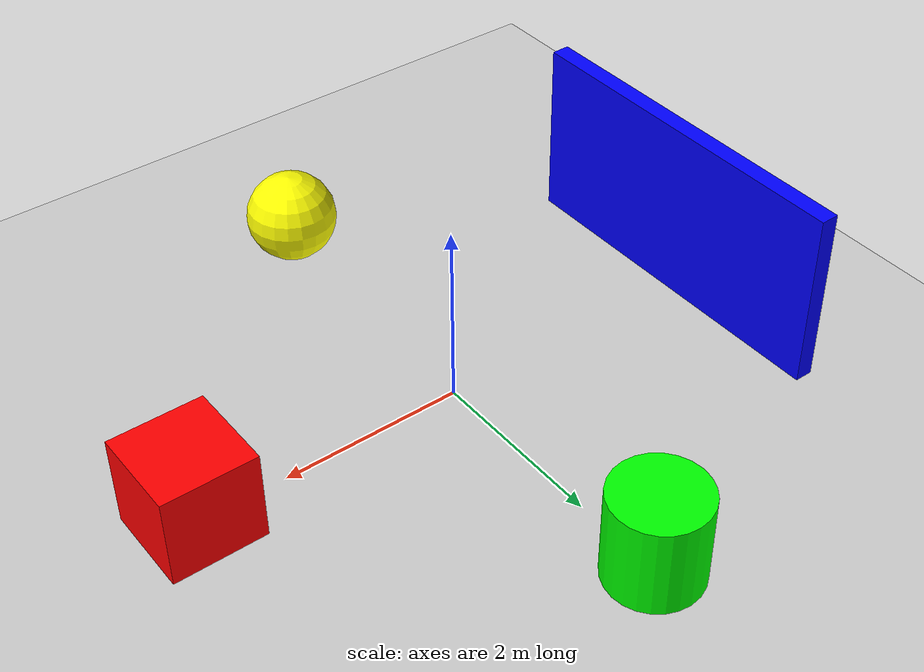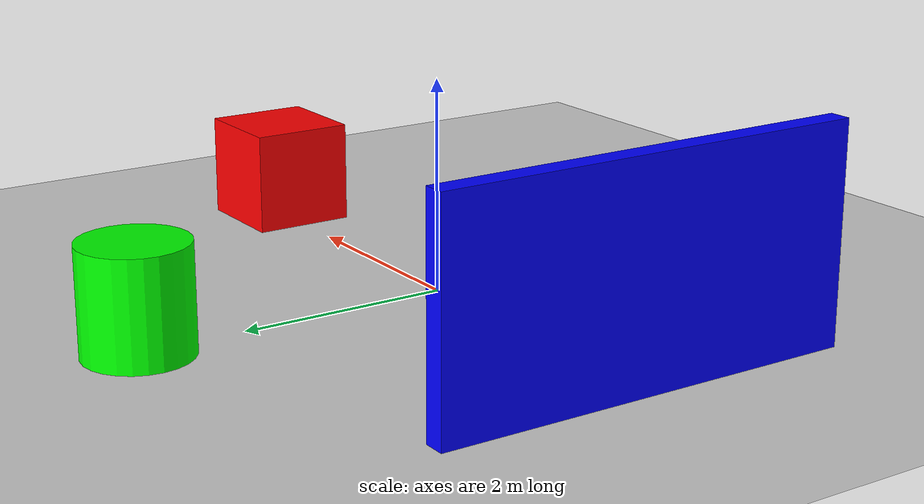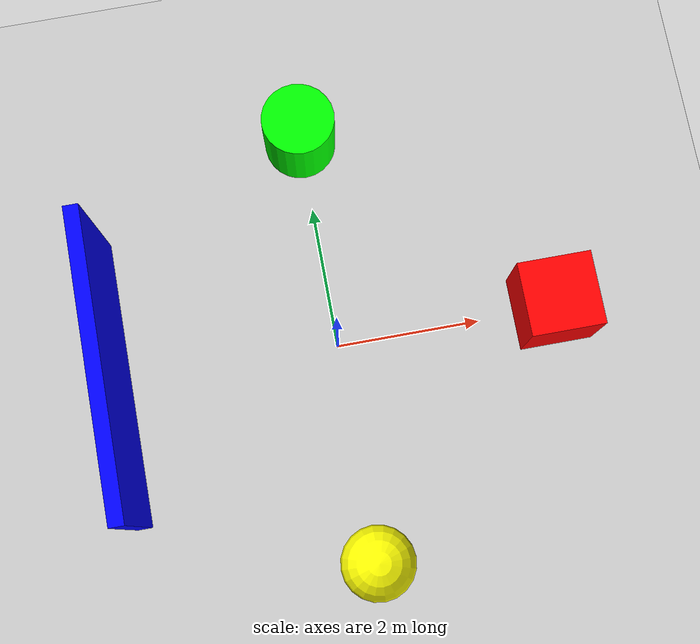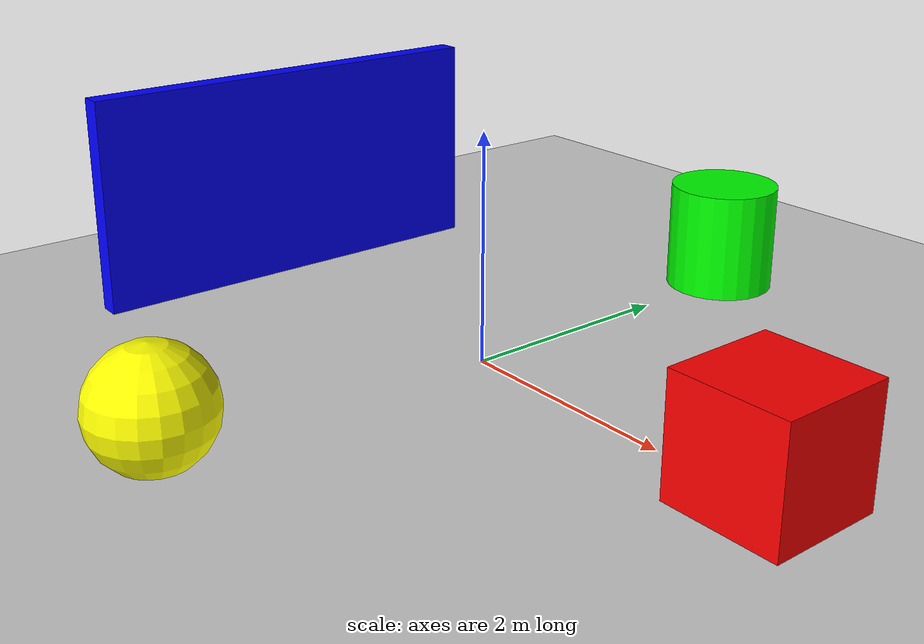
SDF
<?xml version="1.0"?>
<sdf version="1.6">
  <world name="default">
    <include><uri>model://ground_plane</uri></include>
    <include><uri>model://sun</uri></include>

    <!-- Red Box 1 -->
    <model name="red_box_1">
      <pose>3 0 0.5 0 0 0</pose>
      <static>true</static>
      <link name="link">
        <collision name="collision"><geometry><box><size>1 1 1</size></box></geometry></collision>
        <visual name="visual">
          <geometry><box><size>1 1 1</size></box></geometry>
          <material><ambient>1 0 0 1</ambient></material>
        </visual>
      </link>
    </model>

    <!-- Green Cylinder 1 -->
    <model name="green_cylinder_1">
      <pose>0 3 0.5 0 0 0</pose>
      <static>true</static>
      <link name="link">
        <collision name="collision"><geometry><cylinder><radius>0.5</radius><length>1</length></cylinder></geometry></collision>
        <visual name="visual">
          <geometry><cylinder><radius>0.5</radius><length>1</length></cylinder></geometry>
          <material><ambient>0 1 0 1</ambient></material>
        </visual>
      </link>
    </model>

    <!-- Blue Wall -->
    <model name="blue_wall">
      <pose>-3 0 1 0 0 0</pose>
      <static>true</static>
      <link name="link">
        <collision name="collision"><geometry><box><size>0.2 4 2</size></box></geometry></collision>
        <visual name="visual">
          <geometry><box><size>0.2 4 2</size></box></geometry>
          <material><ambient>0 0 1 1</ambient></material>
        </visual>
      </link>
    </model>

    <!-- Yellow Sphere -->
    <model name="yellow_sphere">
      <pose>0 -3 0.5 0 0 0</pose>
      <static>true</static>
      <link name="link">
        <collision name="collision"><geometry><sphere><radius>0.5</radius></sphere></geometry></collision>
        <visual name="visual">
          <geometry><sphere><radius>0.5</radius></sphere></geometry>
          <material><ambient>1 1 0 1</ambient></material>
        </visual>
      </link>
    </model>
  </world>
</sdf>
